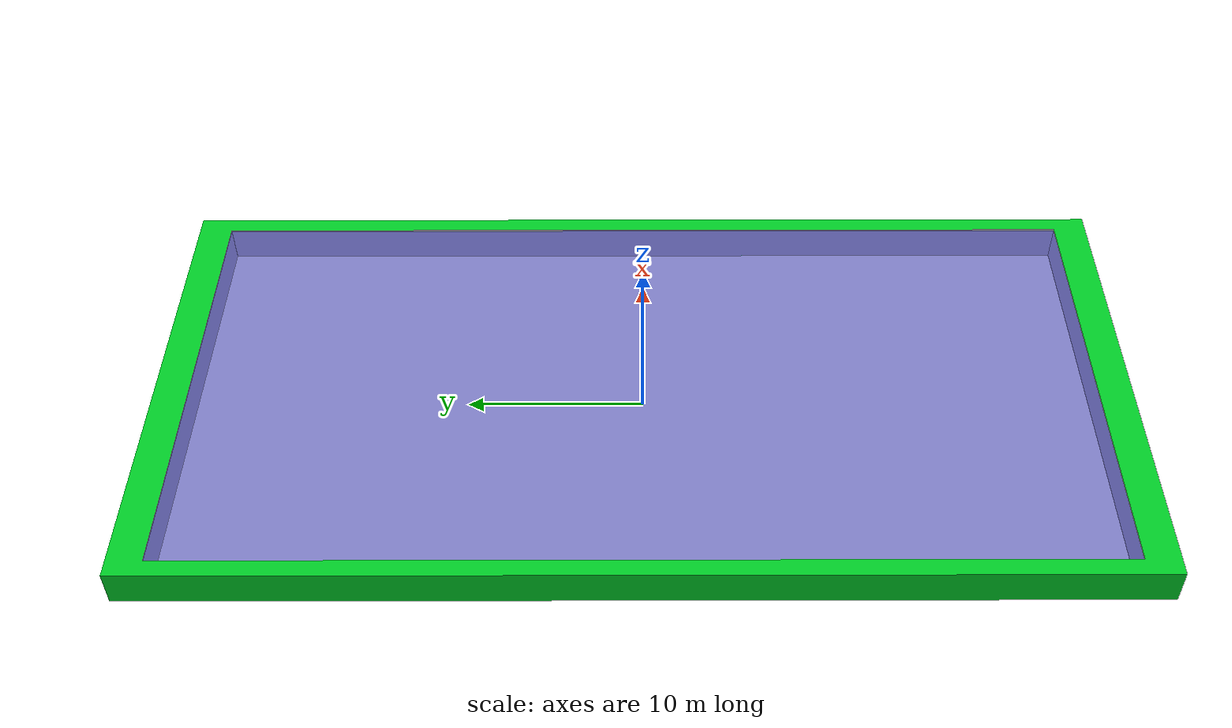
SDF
<?xml version="1.0"?>
<sdf version="1.6">
  <world name="default">

   <include>
      <uri>model://sun</uri>
    </include>

    <model name="water">
      <static>true</static>
      <pose>0 0 1.02 3.1415 0 3.1415</pose>
      <link name="link">
        <visual name="visual">
          <transparency>0.6</transparency>
          <cast_shadows>false</cast_shadows>
          <geometry>
            <box>
              <size>26 51 2</size>
            </box>
          </geometry>
          <material>
            <ambient>0.2 0.2 0.9 1</ambient>
            <diffuse>0.2 0.2 0.9 1</diffuse>
            <specular>0.1 0.1 0.3 1</specular>
            <emissive>0 0 0 1</emissive>
          </material>
        </visual>
      </link>
    </model>

    <model name="pool">
      <pose>0 0 0 0 0 0</pose>
      <static>true</static>
      <link name="ground">
        <visual name="visual">
          <geometry>
            <mesh>
              <uri>model://pool/pool2.dae</uri>
              <scale>1 1 1</scale>
            </mesh>
          </geometry>
        </visual>
        <collision name="collision">
          <geometry>
              <mesh>
                <uri>model://pool/pool2.dae</uri>
                <scale>1 1 1</scale>
              </mesh>
          </geometry>
        </collision>
      </link>
    </model>
  </world>
</sdf>
